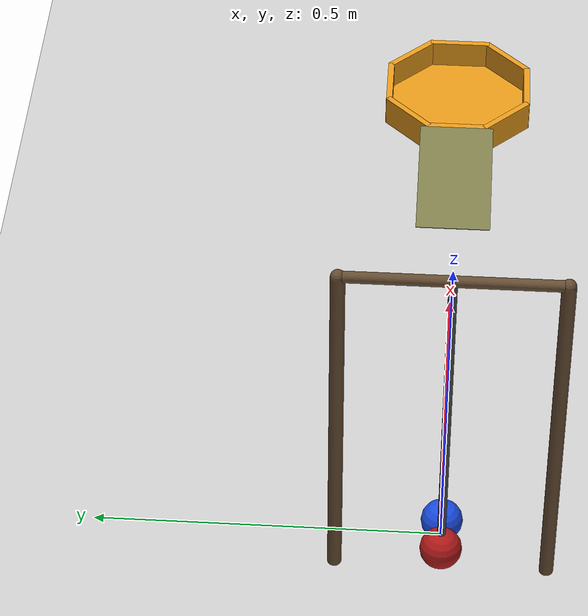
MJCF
<mujoco model="pendulum_ball_cup">
  <option timestep="0.002"/>
  <worldbody>
    <light name="sun" pos="0.5 0 3" dir="0 0 -1" diffuse="0.8 0.8 0.8"/>
    <geom name="floor" type="plane" size="3 3 0.1" rgba="0.8 0.8 0.8 1"/>

    <geom name="frame_post_left" type="capsule" fromto="-0.06 0.15 0 -0.06 0.15 0.535" size="0.01" contype="0" conaffinity="0" rgba="0.4 0.3 0.2 1"/>
    <geom name="frame_post_right" type="capsule" fromto="-0.06 -0.15 0 -0.06 -0.15 0.535" size="0.01" contype="0" conaffinity="0" rgba="0.4 0.3 0.2 1"/>
    <geom name="frame_axle" type="capsule" fromto="-0.06 -0.15 0.535 -0.06 0.15 0.535" size="0.008" contype="0" conaffinity="0" rgba="0.4 0.3 0.2 1"/>

    <body name="pendulum" pos="-0.06 0 0.535">
      <joint name="pendulum_hinge" type="hinge" axis="0 1 0"/>
      <geom name="pendulum_rod" type="capsule" fromto="0 0 0 0 0 -0.47" size="0.006" mass="0.05" rgba="0.3 0.3 0.3 1"/>
      <geom name="pendulum_bob" type="sphere" pos="0 0 -0.5" size="0.03" mass="1.0" condim="1" priority="1" rgba="0.7 0.1 0.1 1"/>
    </body>

    <body name="ball" pos="0 0 0.03">
      <freejoint name="ball_free"/>
      <geom name="ball" type="sphere" size="0.03" mass="0.05" condim="6" friction="1 0.005 0.0003" rgba="0.1 0.3 0.9 1"/>
    </body>

    <geom name="ramp" type="box" pos="0.78121 0 0.02015" euler="0 -14.036 0" size="0.10308 0.06 0.005" rgba="0.5 0.5 0.3 1"/>

    <body name="cup" pos="1 0 0">
      <geom name="cup_bottom" type="cylinder" pos="0 0 0.0025" size="0.12 0.0025" rgba="0.9 0.6 0.1 1"/>
      <geom name="cup_wall_0" type="box" pos="0.115 0 0.025" euler="0 0 0" size="0.005 0.05 0.025" rgba="0.9 0.6 0.1 1"/>
      <geom name="cup_wall_45" type="box" pos="0.08132 0.08132 0.025" euler="0 0 45" size="0.005 0.05 0.025" rgba="0.9 0.6 0.1 1"/>
      <geom name="cup_wall_90" type="box" pos="0 0.115 0.025" euler="0 0 90" size="0.005 0.05 0.025" rgba="0.9 0.6 0.1 1"/>
      <geom name="cup_wall_135" type="box" pos="-0.08132 0.08132 0.025" euler="0 0 135" size="0.005 0.05 0.025" rgba="0.9 0.6 0.1 1"/>
      <geom name="cup_wall_180" type="box" pos="-0.115 0 0.025" euler="0 0 180" size="0.005 0.05 0.025" rgba="0.9 0.6 0.1 1"/>
      <geom name="cup_wall_225" type="box" pos="-0.08132 -0.08132 0.025" euler="0 0 225" size="0.005 0.05 0.025" rgba="0.9 0.6 0.1 1"/>
      <geom name="cup_wall_270" type="box" pos="0 -0.115 0.025" euler="0 0 270" size="0.005 0.05 0.025" rgba="0.9 0.6 0.1 1"/>
      <geom name="cup_wall_315" type="box" pos="0.08132 -0.08132 0.025" euler="0 0 315" size="0.005 0.05 0.025" rgba="0.9 0.6 0.1 1"/>
    </body>
  </worldbody>

  <keyframe>
    <key name="start" qpos="0.733 0 0 0.03 1 0 0 0"/>
  </keyframe>
</mujoco>
